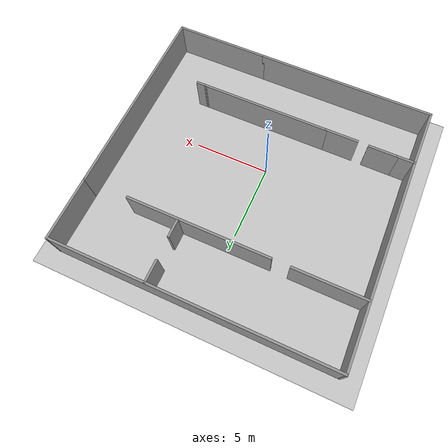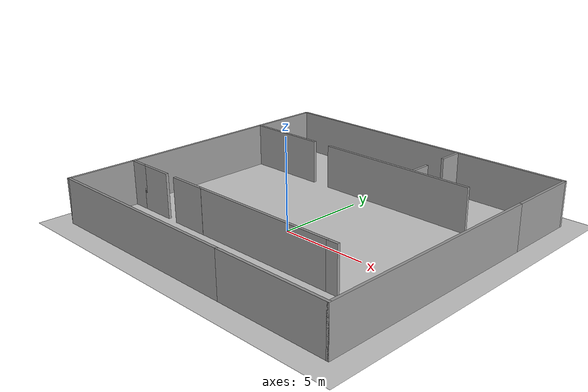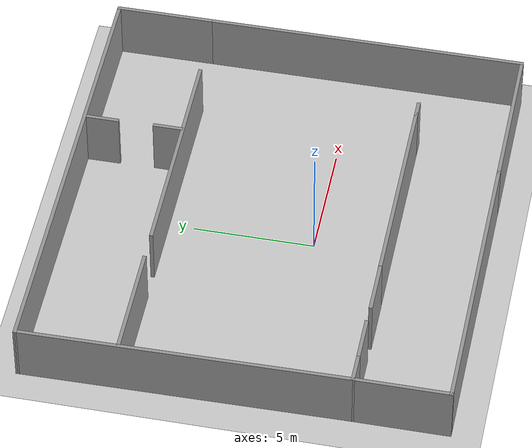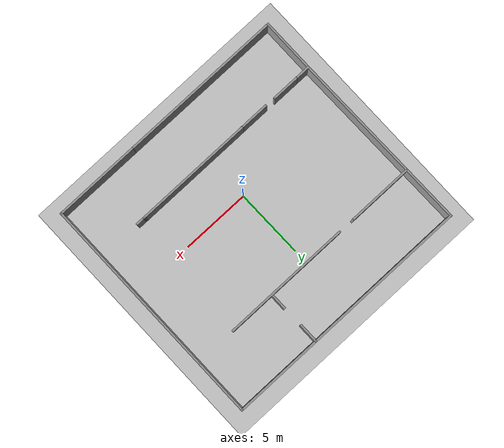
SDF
<sdf version="1.6">
 <world name="default">
  <light name="sun" type="directional">
   <pose>0 0 10 0 -0 0</pose>
   <diffuse>0.8 0.8 0.8 1</diffuse>
   <specular>0.2 0.2 0.2 1</specular>
   <attenuation>
    <range>1000</range>
    <constant>0.9</constant>
    <linear>0.01</linear>
    <quadratic>0.001</quadratic>
   </attenuation>
   <direction>-0.5 0.1 -0.9</direction>
  </light>
  <model name="ground_plane">
   <static>1</static>
   <link name="link">
    <collision name="collision">
     <geometry><plane><normal>0 0 1</normal><size>100 100</size></plane></geometry>
     <surface>
      <contact><collide_bitmask>65535</collide_bitmask></contact>
      <friction><ode><mu>100</mu><mu2>50</mu2></ode></friction>
     </surface>
    </collision>
    <visual name="visual">
     <cast_shadows>0</cast_shadows>
     <geometry><plane><normal>0 0 1</normal><size>100 100</size></plane></geometry>
     <material>
      <script><uri>file://media/materials/scripts/gazebo.material</uri><name>Gazebo/Grey</name></script>
     </material>
    </visual>
   </link>
  </model>
  <gravity>0 0 -9.8</gravity>
  <magnetic_field>6e-06 2.3e-05 -4.2e-05</magnetic_field>
  <atmosphere type="adiabatic"/>
  <physics name="default_physics" default="0" type="ode">
   <max_step_size>0.001</max_step_size>
   <real_time_factor>1</real_time_factor>
   <real_time_update_rate>1000</real_time_update_rate>
  </physics>
  <scene><ambient>0.4 0.4 0.4 1</ambient><background>0.7 0.7 0.7 1</background><shadows>1</shadows></scene>
  <audio><device>default</device></audio>
  <spherical_coordinates>
   <surface_model>EARTH_WGS84</surface_model>
   <latitude_deg>0</latitude_deg>
   <longitude_deg>0</longitude_deg>
   <elevation>0</elevation>
   <heading_deg>0</heading_deg>
  </spherical_coordinates>
  <model name="swiat_v3">
   <pose>0.364584 1.60021 0 0 -0 0</pose>
   <link name="Wall_15">
    <collision name="Wall_15_Collision">
     <geometry><box><size>6.5 0.15 2.5</size></box></geometry>
     <pose>0 0 1.25 0 -0 0</pose>
    </collision>
    <visual name="Wall_15_Visual">
     <pose>0 0 1.25 0 -0 0</pose>
     <geometry><box><size>6.5 0.15 2.5</size></box></geometry>
     <material>
      <script><uri>file://media/materials/scripts/gazebo.material</uri><name>Gazebo/Grey</name></script>
      <ambient>1 1 1 1</ambient>
     </material>
     <meta><layer>0</layer></meta>
    </visual>
    <pose>6.00042 -8.60021 0 0 -0 0</pose>
   </link>
   <link name="Wall_16">
    <collision name="Wall_16_Collision">
     <geometry><box><size>13.25 0.15 2.5</size></box></geometry>
     <pose>0 0 1.25 0 -0 0</pose>
    </collision>
    <visual name="Wall_16_Visual">
     <pose>0 0 1.25 0 -0 0</pose>
     <geometry><box><size>13.25 0.15 2.5</size></box></geometry>
     <material>
      <script><uri>file://media/materials/scripts/gazebo.material</uri><name>Gazebo/Grey</name></script>
      <ambient>1 1 1 1</ambient>
     </material>
     <meta><layer>0</layer></meta>
    </visual>
    <pose>9.17542 -2.05021 0 0 -0 1.5708</pose>
   </link>
   <link name="Wall_17">
    <collision name="Wall_17_Collision">
     <geometry><box><size>4.25 0.15 2.5</size></box></geometry>
     <pose>0 0 1.25 0 -0 0</pose>
    </collision>
    <visual name="Wall_17_Visual">
     <pose>0 0 1.25 0 -0 0</pose>
     <geometry><box><size>4.25 0.15 2.5</size></box></geometry>
     <material>
      <script><uri>file://media/materials/scripts/gazebo.material</uri><name>Gazebo/Grey</name></script>
      <ambient>1 1 1 1</ambient>
     </material>
     <meta><layer>0</layer></meta>
    </visual>
    <pose>9.17542 6.54979 0 0 -0 1.5708</pose>
   </link>
   <link name="Wall_18">
    <collision name="Wall_18_Collision">
     <geometry><box><size>18.5 0.15 2.5</size></box></geometry>
     <pose>0 0 1.25 0 -0 0</pose>
    </collision>
    <visual name="Wall_18_Visual">
     <pose>0 0 1.25 0 -0 0</pose>
     <geometry><box><size>18.5 0.15 2.5</size></box></geometry>
     <material>
      <script><uri>file://media/materials/scripts/gazebo.material</uri><name>Gazebo/Grey</name></script>
      <ambient>1 1 1 1</ambient>
     </material>
     <meta><layer>0</layer></meta>
    </visual>
    <pose>0.000416 8.59979 0 0 -0 3.14159</pose>
   </link>
   <link name="Wall_19">
    <collision name="Wall_19_Collision">
     <geometry><box><size>13.5 0.15 2.5</size></box></geometry>
     <pose>0 0 1.25 0 -0 0</pose>
    </collision>
    <visual name="Wall_19_Visual">
     <pose>0 0 1.25 0 -0 0</pose>
     <geometry><box><size>13.5 0.15 2.5</size></box></geometry>
     <material>
      <script><uri>file://media/materials/scripts/gazebo.material</uri><name>Gazebo/Grey</name></script>
      <ambient>1 1 1 1</ambient>
     </material>
     <meta><layer>0</layer></meta>
    </visual>
    <pose>-9.09958 1.92479 0 0 -0 -1.55956</pose>
   </link>
   <link name="Wall_21">
    <collision name="Wall_21_Collision">
     <geometry><box><size>8.74478 0.15 2.5</size></box></geometry>
     <pose>0 0 1.25 0 -0 0</pose>
    </collision>
    <visual name="Wall_21_Visual">
     <pose>0 0 1.25 0 -0 0</pose>
     <geometry><box><size>8.74478 0.15 2.5</size></box></geometry>
     <material>
      <script><uri>file://media/materials/scripts/gazebo.material</uri><name>Gazebo/Grey</name></script>
      <ambient>1 1 1 1</ambient>
     </material>
     <meta><layer>0</layer></meta>
    </visual>
    <pose>1.13253 -4.77117 0 0 -0 0.000573</pose>
   </link>
   <link name="Wall_25">
    <collision name="Wall_25_Collision">
     <geometry><box><size>0.75 0.15 2.5</size></box></geometry>
     <pose>0 0 1.25 0 -0 0</pose>
    </collision>
    <visual name="Wall_25_Visual">
     <pose>0 0 1.25 0 -0 0</pose>
     <geometry><box><size>0.75 0.15 2.5</size></box></geometry>
     <material>
      <script><uri>file://media/materials/scripts/gazebo.material</uri><name>Gazebo/Grey</name></script>
      <ambient>1 1 1 1</ambient>
     </material>
     <meta><layer>0</layer></meta>
    </visual>
    <pose>5.71842 -4.76871 0 0 -0 0</pose>
   </link>
   <link name="Wall_28">
    <collision name="Wall_28_Collision">
     <geometry><box><size>4.75 0.15 2.5</size></box></geometry>
     <pose>0 0 1.25 0 -0 0</pose>
    </collision>
    <visual name="Wall_28_Visual">
     <pose>0 0 1.25 0 -0 0</pose>
     <geometry><box><size>4.75 0.15 2.5</size></box></geometry>
     <material>
      <script><uri>file://media/materials/scripts/gazebo.material</uri><name>Gazebo/Grey</name></script>
      <ambient>1 1 1 1</ambient>
     </material>
     <meta><layer>0</layer></meta>
    </visual>
    <pose>-6.75146 4.49138 0 0 -0 0</pose>
   </link>
   <link name="Wall_3">
    <collision name="Wall_3_Collision">
     <geometry><box><size>2 0.15 2.5</size></box></geometry>
     <pose>0 0 1.25 0 -0 0</pose>
    </collision>
    <visual name="Wall_3_Visual">
     <pose>0 0 1.25 0 -0 0</pose>
     <geometry><box><size>2 0.15 2.5</size></box></geometry>
     <material>
      <script><uri>file://media/materials/scripts/gazebo.material</uri><name>Gazebo/Grey</name></script>
      <ambient>1 1 1 1</ambient>
     </material>
     <meta><layer>0</layer></meta>
    </visual>
    <pose>-6.99958 -4.75021 0 0 -0 0</pose>
   </link>
   <link name="Wall_32">
    <collision name="Wall_32_Collision">
     <geometry><box><size>9.5 0.15 2.5</size></box></geometry>
     <pose>0 0 1.25 0 -0 0</pose>
    </collision>
    <visual name="Wall_32_Visual">
     <pose>0 0 1.25 0 -0 0</pose>
     <geometry><box><size>9.5 0.15 2.5</size></box></geometry>
     <material>
      <script><uri>file://media/materials/scripts/gazebo.material</uri><name>Gazebo/Grey</name></script>
      <ambient>1 1 1 1</ambient>
     </material>
     <meta><layer>0</layer></meta>
    </visual>
    <pose>1.49097 4.47818 0 0 -0 0</pose>
   </link>
   <link name="Wall_37">
    <collision name="Wall_37_Collision">
     <geometry><box><size>1.5 0.15 2.5</size></box></geometry>
     <pose>0 0 1.25 0 -0 0</pose>
    </collision>
    <visual name="Wall_37_Visual">
     <pose>0 0 1.25 0 -0 0</pose>
     <geometry><box><size>1.5 0.15 2.5</size></box></geometry>
     <material>
      <script><uri>file://media/materials/scripts/gazebo.material</uri><name>Gazebo/Grey</name></script>
      <ambient>1 1 1 1</ambient>
     </material>
     <meta><layer>0</layer></meta>
    </visual>
    <pose>2.71681 7.90494 0 0 -0 -1.5708</pose>
   </link>
   <link name="Wall_43">
    <collision name="Wall_43_Collision">
     <geometry><box><size>1.25 0.15 2.5</size></box></geometry>
     <pose>0 0 1.25 0 -0 0</pose>
    </collision>
    <visual name="Wall_43_Visual">
     <pose>0 0 1.25 0 -0 0</pose>
     <geometry><box><size>1.25 0.15 2.5</size></box></geometry>
     <material>
      <script><uri>file://media/materials/scripts/gazebo.material</uri><name>Gazebo/Grey</name></script>
      <ambient>1 1 1 1</ambient>
     </material>
     <meta><layer>0</layer></meta>
    </visual>
    <pose>2.75131 5.09744 0 0 -0 -1.5708</pose>
   </link>
   <link name="Wall_5">
    <collision name="Wall_5_Collision">
     <geometry><box><size>2.25 0.15 2.5</size></box></geometry>
     <pose>0 0 1.25 0 -0 0</pose>
    </collision>
    <visual name="Wall_5_Visual">
     <pose>0 0 1.25 0 -0 0</pose>
     <geometry><box><size>2.25 0.15 2.5</size></box></geometry>
     <material>
      <script><uri>file://media/materials/scripts/gazebo.material</uri><name>Gazebo/Grey</name></script>
      <ambient>1 1 1 1</ambient>
     </material>
     <meta><layer>0</layer></meta>
    </visual>
    <pose>-4.21486 -4.78021 0 0 -0 0</pose>
   </link>
   <link name="Wall_7">
    <collision name="Wall_7_Collision">
     <geometry><box><size>1.25 0.15 2.5</size></box></geometry>
     <pose>0 0 1.25 0 -0 0</pose>
    </collision>
    <visual name="Wall_7_Visual">
     <pose>0 0 1.25 0 -0 0</pose>
     <geometry><box><size>1.25 0.15 2.5</size></box></geometry>
     <material>
      <script><uri>file://media/materials/scripts/gazebo.material</uri><name>Gazebo/Grey</name></script>
      <ambient>1 1 1 1</ambient>
     </material>
     <meta><layer>0</layer></meta>
    </visual>
    <pose>-8.47458 -4.75021 0 0 -0 3.14159</pose>
   </link>
   <link name="Wall_8">
    <collision name="Wall_8_Collision">
     <geometry><box><size>4 0.15 2.5</size></box></geometry>
     <pose>0 0 1.25 0 -0 0</pose>
    </collision>
    <visual name="Wall_8_Visual">
     <pose>0 0 1.25 0 -0 0</pose>
     <geometry><box><size>4 0.15 2.5</size></box></geometry>
     <material>
      <script><uri>file://media/materials/scripts/gazebo.material</uri><name>Gazebo/Grey</name></script>
      <ambient>1 1 1 1</ambient>
     </material>
     <meta><layer>0</layer></meta>
    </visual>
    <pose>-9.02458 -6.67521 0 0 -0 -1.5708</pose>
   </link>
   <link name="Wall_9">
    <collision name="Wall_9_Collision">
     <geometry><box><size>12 0.15 2.5</size></box></geometry>
     <pose>0 0 1.25 0 -0 0</pose>
    </collision>
    <visual name="Wall_9_Visual">
     <pose>0 0 1.25 0 -0 0</pose>
     <geometry><box><size>12 0.15 2.5</size></box></geometry>
     <material>
      <script><uri>file://media/materials/scripts/gazebo.material</uri><name>Gazebo/Grey</name></script>
      <ambient>1 1 1 1</ambient>
     </material>
     <meta><layer>0</layer></meta>
    </visual>
    <pose>-3.09958 -8.60021 0 0 -0 0</pose>
   </link>
   <static>1</static>
  </model>
 </world>
</sdf>
